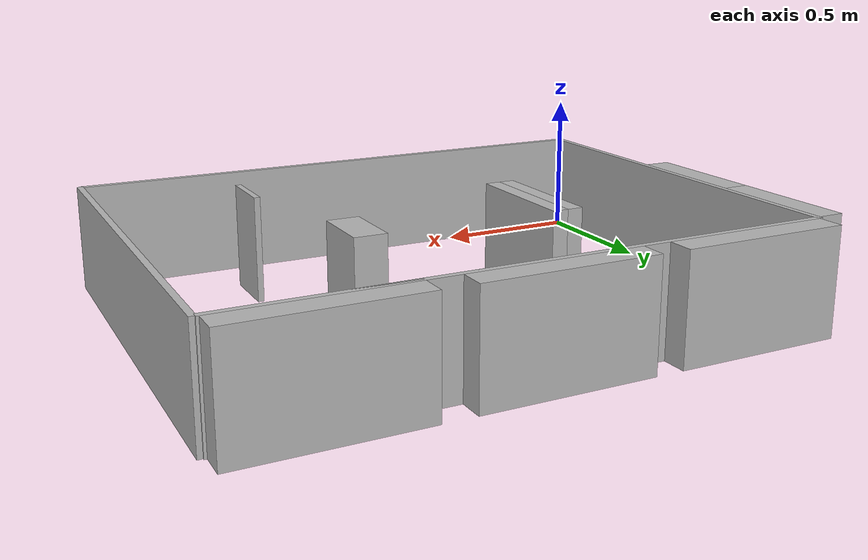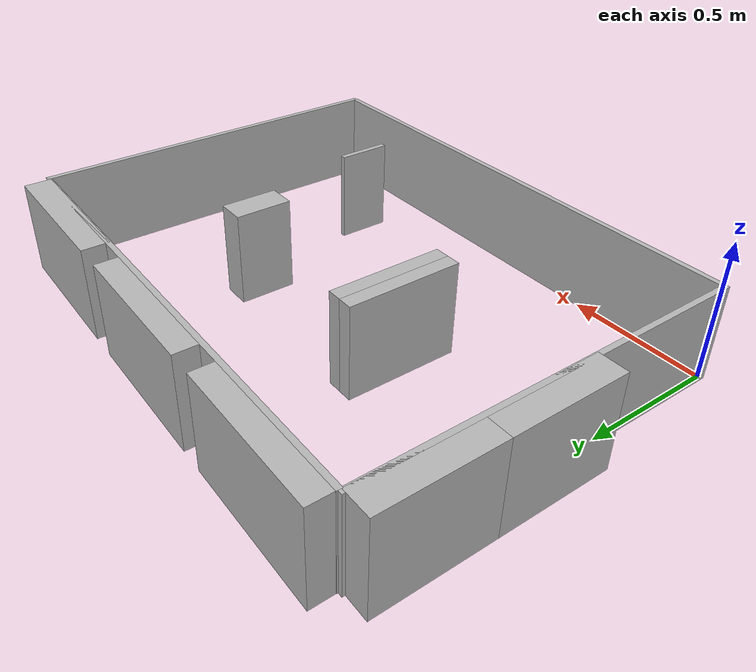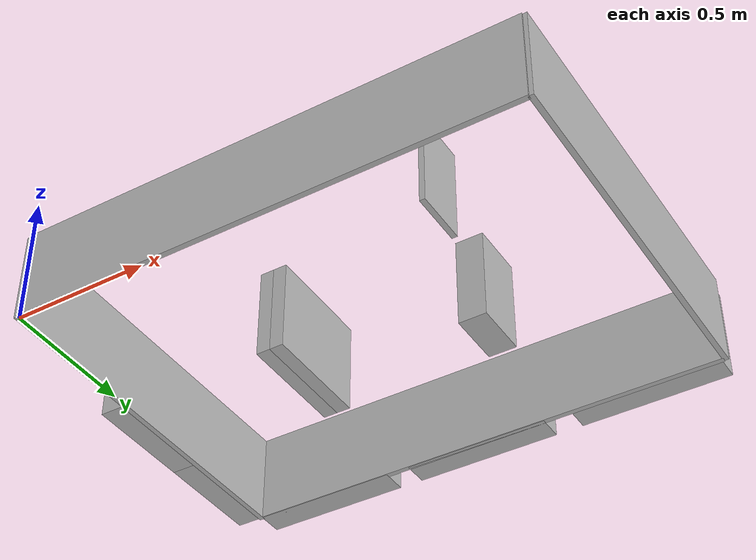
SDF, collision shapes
<?xml version="1.0" ?>
<sdf version="1.8">
  <model name="shop">
    <static>true</static>
    <link name="link">
      <pose>0 0 0 0 0 0</pose>
      <visual name="visual">
        <geometry>
          <mesh>
            <uri>meshes/shop.dae</uri>
            <scale>1.044444 1 1</scale>
          </mesh>
        </geometry>
      </visual>

      <!-- Perimeter walls -->
      <collision name="wall_south">
        <pose>0.938101 -0.00499 0.175 0 0 0</pose>
        <geometry>
          <box>
            <size>1.876202 0.02 0.35</size>
          </box>
        </geometry>
      </collision>
      <collision name="wall_north">
        <pose>0.938083 1.402159 0.175 0 0 0</pose>
        <geometry>
          <box>
            <size>1.876202 0.02 0.35</size>
          </box>
        </geometry>
      </collision>
      <collision name="wall_west">
        <pose>-0.005212 0.698584 0.175 0 0 0</pose>
        <geometry>
          <box>
            <size>0.02 1.417131 0.35</size>
          </box>
        </geometry>
      </collision>
      <collision name="wall_east">
        <pose>1.881414 0.698584 0.175 0 0 0</pose>
        <geometry>
          <box>
            <size>0.02 1.417131 0.35</size>
          </box>
        </geometry>
      </collision>

      <!-- divider: L = thin bar along +x + thin bar along +y (local AABBs → same DAE matrix) -->
      <collision name="divider_arm_y">
        <pose>1.404525 0.299388 0.175 0 0 0</pose>
        <geometry>
          <box>
            <size>0.02 0.199596 0.35</size>
          </box>
        </geometry>
      </collision>

      <!-- section_* (DAE node sectinon_meat = meat) -->
      <collision name="section_meat">
        <pose>0.277776 1.445972 0.175 0 0 0</pose>
        <geometry>
          <box>
            <size>0.553494 0.099798 0.35</size>
          </box>
        </geometry>
      </collision>
      <collision name="section_seafood">
        <pose>0.922043 1.445972 0.175 0 0 0</pose>
        <geometry>
          <box>
            <size>0.553946 0.099798 0.35</size>
          </box>
        </geometry>
      </collision>
      <collision name="section_frizer">
        <pose>0.630644 0.769007 0.175 0 0 0</pose>
        <geometry>
          <box>
            <size>0.052254 0.419503 0.35</size>
          </box>
        </geometry>
      </collision>
      <collision name="section_refriger">
        <pose>0.578390 0.769007 0.175 0 0 0</pose>
        <geometry>
          <box>
            <size>0.052254 0.419503 0.35</size>
          </box>
        </geometry>
      </collision>
      <collision name="section_electronics">
        <pose>-0.051088 0.767819 0.175 0 0 0</pose>
        <geometry>
          <box>
            <size>0.104233 0.419503 0.35</size>
          </box>
        </geometry>
      </collision>
      <collision name="section_snacks">
        <pose>-0.051088 1.187322 0.175 0 0 0</pose>
        <geometry>
          <box>
            <size>0.104233 0.419503 0.35</size>
          </box>
        </geometry>
      </collision>
      <collision name="section_vegetable">
        <pose>1.585925 1.445972 0.175 0 0 0</pose>
        <geometry>
          <box>
            <size>0.564466 0.099798 0.35</size>
          </box>
        </geometry>
      </collision>
      <collision name="section_beverage">
        <pose>1.261203 0.873227 0.175 0 0 0</pose>
        <geometry>
          <box>
            <size>0.104233 0.209576 0.35</size>
          </box>
        </geometry>
      </collision>
    </link>
  </model>
</sdf>
